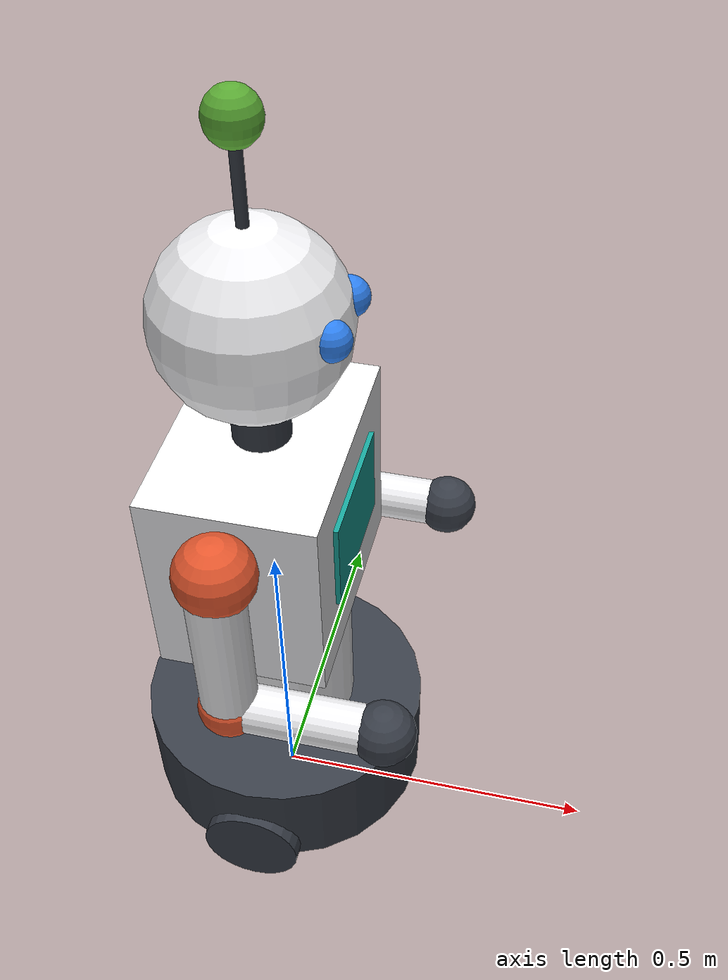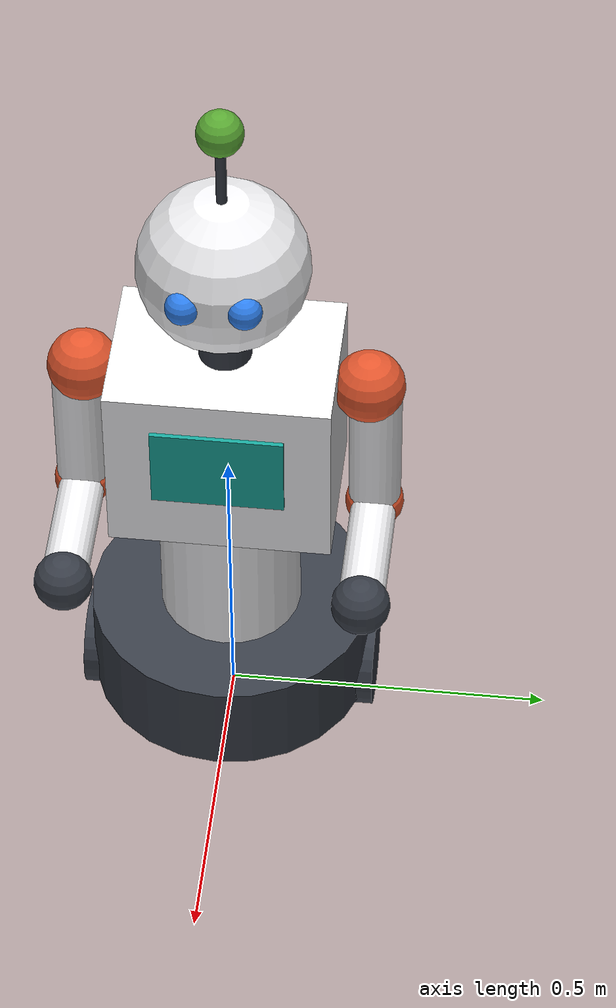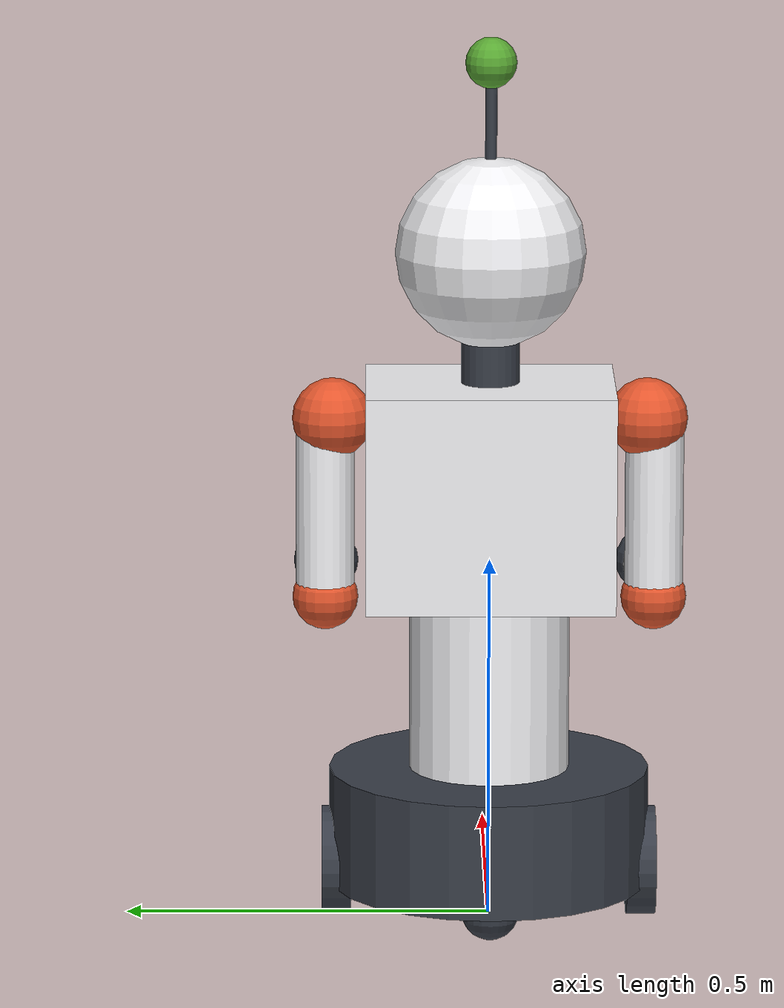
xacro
<?xml version="1.0"?>
<robot name="wiloc_bot" xmlns:xacro="http://www.ros.org/wiki/xacro">

  <xacro:property name="wheel_radius" value="0.075"/>
  <xacro:property name="wheel_width" value="0.04"/>
  <xacro:property name="wheel_sep" value="0.42"/>
  <xacro:property name="base_r" value="0.22"/>
  <xacro:property name="base_h" value="0.16"/>
  <xacro:property name="base_z" value="0.13"/>
  <xacro:property name="caster_r" value="0.04"/>

  <material name="white"><color rgba="0.95 0.95 0.96 1"/></material>
  <material name="dark"><color rgba="0.22 0.24 0.28 1"/></material>
  <material name="teal"><color rgba="0.09 0.64 0.60 1"/></material>
  <material name="orange"><color rgba="0.89 0.34 0.18 1"/></material>
  <material name="blue"><color rgba="0.18 0.50 0.93 1"/></material>
  <material name="green"><color rgba="0.35 0.66 0.20 1"/></material>

  <!-- A rigid, visual-only body part with its own colour in RViz and Gazebo. -->
  <xacro:macro name="part" params="name parent *geometry xyz rpy:='0 0 0' material gz">
    <link name="${name}">
      <visual>
        <origin xyz="0 0 0" rpy="${rpy}"/>
        <xacro:insert_block name="geometry"/>
        <material name="${material}"/>
      </visual>
    </link>
    <joint name="${name}_joint" type="fixed">
      <parent link="${parent}"/>
      <child link="${name}"/>
      <origin xyz="${xyz}"/>
    </joint>
    <gazebo reference="${name}"><material>${gz}</material></gazebo>
  </xacro:macro>

  <link name="base_footprint"/>

  <!-- Mobile base -->
  <link name="base_link">
    <visual>
      <origin xyz="0 0 ${base_z}"/>
      <geometry><cylinder radius="${base_r}" length="${base_h}"/></geometry>
      <material name="dark"/>
    </visual>
    <collision>
      <origin xyz="0 0 ${base_z}"/>
      <geometry><cylinder radius="${base_r}" length="${base_h}"/></geometry>
    </collision>
    <!-- torso as a simple collision box so the robot cannot pass through walls -->
    <collision>
      <origin xyz="0 0 0.55"/>
      <geometry><box size="0.26 0.36 0.6"/></geometry>
    </collision>
    <inertial>
      <origin xyz="0 0 0.12"/>
      <mass value="15.0"/>
      <inertia ixx="0.26" ixy="0" ixz="0" iyy="0.26" iyz="0" izz="0.36"/>
    </inertial>
  </link>
  <joint name="base_joint" type="fixed">
    <parent link="base_footprint"/>
    <child link="base_link"/>
    <origin xyz="0 0 0"/>
  </joint>
  <gazebo reference="base_link"><material>Gazebo/DarkGrey</material></gazebo>

  <xacro:macro name="wheel" params="side y">
    <link name="wheel_${side}_link">
      <visual>
        <origin rpy="${pi/2} 0 0"/>
        <geometry><cylinder radius="${wheel_radius}" length="${wheel_width}"/></geometry>
        <material name="dark"/>
      </visual>
      <collision>
        <origin rpy="${pi/2} 0 0"/>
        <geometry><cylinder radius="${wheel_radius}" length="${wheel_width}"/></geometry>
      </collision>
      <inertial>
        <mass value="0.6"/>
        <inertia ixx="9e-4" ixy="0" ixz="0" iyy="1.7e-3" iyz="0" izz="9e-4"/>
      </inertial>
    </link>
    <joint name="wheel_${side}_joint" type="continuous">
      <parent link="base_link"/>
      <child link="wheel_${side}_link"/>
      <origin xyz="0 ${y} ${wheel_radius}"/>
      <axis xyz="0 1 0"/>
    </joint>
    <gazebo reference="wheel_${side}_link">
      <mu1>1.0</mu1><mu2>1.0</mu2><kp>500000</kp><kd>10</kd><minDepth>0.001</minDepth>
      <material>Gazebo/Black</material>
    </gazebo>
  </xacro:macro>
  <xacro:wheel side="left" y="${wheel_sep/2}"/>
  <xacro:wheel side="right" y="${-wheel_sep/2}"/>

  <xacro:macro name="caster" params="name x">
    <link name="${name}_link">
      <visual><geometry><sphere radius="${caster_r}"/></geometry><material name="dark"/></visual>
      <collision><geometry><sphere radius="${caster_r}"/></geometry></collision>
      <inertial><mass value="0.1"/><inertia ixx="6e-5" ixy="0" ixz="0" iyy="6e-5" iyz="0" izz="6e-5"/></inertial>
    </link>
    <joint name="${name}_joint" type="fixed">
      <parent link="base_link"/>
      <child link="${name}_link"/>
      <origin xyz="${x} 0 ${caster_r + 0.005}"/>
    </joint>
    <gazebo reference="${name}_link"><mu1>0.0</mu1><mu2>0.0</mu2><material>Gazebo/DarkGrey</material></gazebo>
  </xacro:macro>
  <xacro:caster name="caster_front" x="0.15"/>
  <xacro:caster name="caster_back" x="-0.15"/>

  <!-- Humanoid upper body (visual only) -->
  <xacro:part name="waist" parent="base_link" xyz="0 0 0.34" material="white" gz="Gazebo/White">
    <geometry><cylinder radius="0.11" length="0.26"/></geometry>
  </xacro:part>
  <xacro:part name="chest" parent="base_link" xyz="0 0 0.6" material="white" gz="Gazebo/White">
    <geometry><box size="0.24 0.34 0.3"/></geometry>
  </xacro:part>
  <xacro:part name="chest_panel" parent="base_link" xyz="0.122 0 0.62" material="teal" gz="Gazebo/Turquoise">
    <geometry><box size="0.01 0.2 0.14"/></geometry>
  </xacro:part>
  <xacro:part name="neck" parent="base_link" xyz="0 0 0.785" material="dark" gz="Gazebo/DarkGrey">
    <geometry><cylinder radius="0.04" length="0.07"/></geometry>
  </xacro:part>
  <xacro:part name="head" parent="base_link" xyz="0 0 0.93" material="white" gz="Gazebo/White">
    <geometry><sphere radius="0.13"/></geometry>
  </xacro:part>
  <xacro:part name="eye_left" parent="base_link" xyz="0.112 0.045 0.95" material="blue" gz="Gazebo/BlueGlow">
    <geometry><sphere radius="0.026"/></geometry>
  </xacro:part>
  <xacro:part name="eye_right" parent="base_link" xyz="0.112 -0.045 0.95" material="blue" gz="Gazebo/BlueGlow">
    <geometry><sphere radius="0.026"/></geometry>
  </xacro:part>

  <xacro:macro name="arm" params="side s">
    <xacro:part name="shoulder_${side}" parent="base_link" xyz="0 ${s*0.215} 0.7" material="orange" gz="Gazebo/Orange">
      <geometry><sphere radius="0.055"/></geometry>
    </xacro:part>
    <xacro:part name="upper_arm_${side}" parent="base_link" xyz="0 ${s*0.225} 0.57" material="white" gz="Gazebo/White">
      <geometry><cylinder radius="0.04" length="0.22"/></geometry>
    </xacro:part>
    <xacro:part name="elbow_${side}" parent="base_link" xyz="0 ${s*0.225} 0.45" material="orange" gz="Gazebo/Orange">
      <geometry><sphere radius="0.045"/></geometry>
    </xacro:part>
    <xacro:part name="forearm_${side}" parent="base_link" xyz="0.1 ${s*0.225} 0.45" rpy="0 ${pi/2} 0" material="white" gz="Gazebo/White">
      <geometry><cylinder radius="0.035" length="0.2"/></geometry>
    </xacro:part>
    <xacro:part name="hand_${side}" parent="base_link" xyz="0.215 ${s*0.225} 0.45" material="dark" gz="Gazebo/DarkGrey">
      <geometry><sphere radius="0.045"/></geometry>
    </xacro:part>
  </xacro:macro>
  <xacro:arm side="left" s="1"/>
  <xacro:arm side="right" s="-1"/>

  <!-- Wi-Fi antenna on the head (where RSSI is "measured") -->
  <link name="wifi_antenna">
    <visual>
      <origin xyz="0 0 0.06"/>
      <geometry><cylinder radius="0.008" length="0.12"/></geometry>
      <material name="dark"/>
    </visual>
    <visual>
      <origin xyz="0 0 0.14"/>
      <geometry><sphere radius="0.035"/></geometry>
      <material name="green"/>
    </visual>
  </link>
  <joint name="wifi_joint" type="fixed">
    <parent link="base_link"/>
    <child link="wifi_antenna"/>
    <origin xyz="0 0 1.05"/>
  </joint>
  <gazebo reference="wifi_antenna"><material>Gazebo/GreenGlow</material></gazebo>

  <gazebo>
    <plugin name="wiloc_diff_drive" filename="libgazebo_ros_diff_drive.so">
      <update_rate>30</update_rate>
      <left_joint>wheel_left_joint</left_joint>
      <right_joint>wheel_right_joint</right_joint>
      <wheel_separation>${wheel_sep}</wheel_separation>
      <wheel_diameter>${2*wheel_radius}</wheel_diameter>
      <max_wheel_torque>20.0</max_wheel_torque>
      <max_wheel_acceleration>2.0</max_wheel_acceleration>
      <command_topic>cmd_vel</command_topic>
      <publish_odom>true</publish_odom>
      <!-- odom->base_footprint TF is published by odom_noise_node -->
      <publish_odom_tf>false</publish_odom_tf>
      <publish_wheel_tf>false</publish_wheel_tf>
      <odometry_topic>odom</odometry_topic>
      <odometry_frame>odom</odometry_frame>
      <robot_base_frame>base_footprint</robot_base_frame>
      <!-- 0 = ENCODER (integrated wheel joints), 1 = WORLD (cheating) -->
      <odometry_source>0</odometry_source>
    </plugin>

    <plugin name="wiloc_joint_states" filename="libgazebo_ros_joint_state_publisher.so">
      <update_rate>30</update_rate>
      <joint_name>wheel_left_joint</joint_name>
      <joint_name>wheel_right_joint</joint_name>
    </plugin>

    <plugin name="wiloc_ground_truth" filename="libgazebo_ros_p3d.so">
      <ros><remapping>odom:=ground_truth</remapping></ros>
      <body_name>base_footprint</body_name>
      <frame_name>world</frame_name>
      <update_rate>20</update_rate>
      <gaussian_noise>0.0</gaussian_noise>
    </plugin>
  </gazebo>
</robot>
